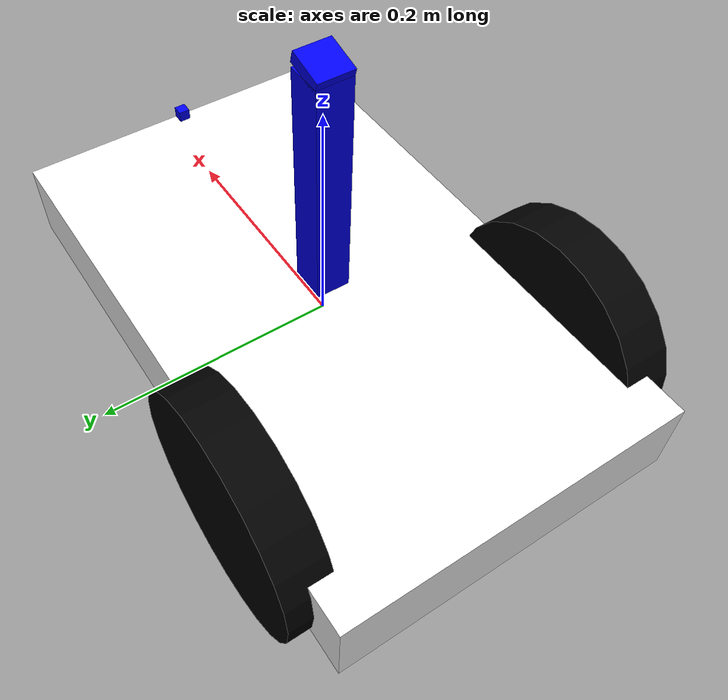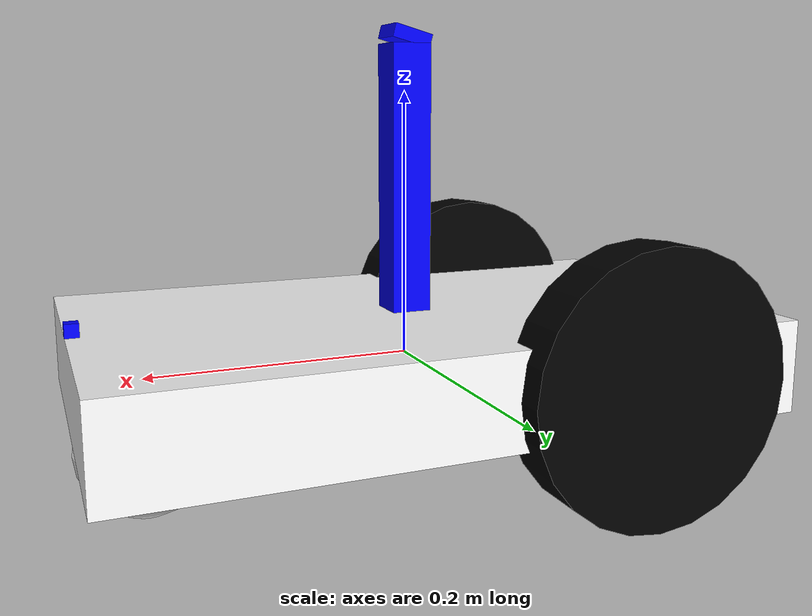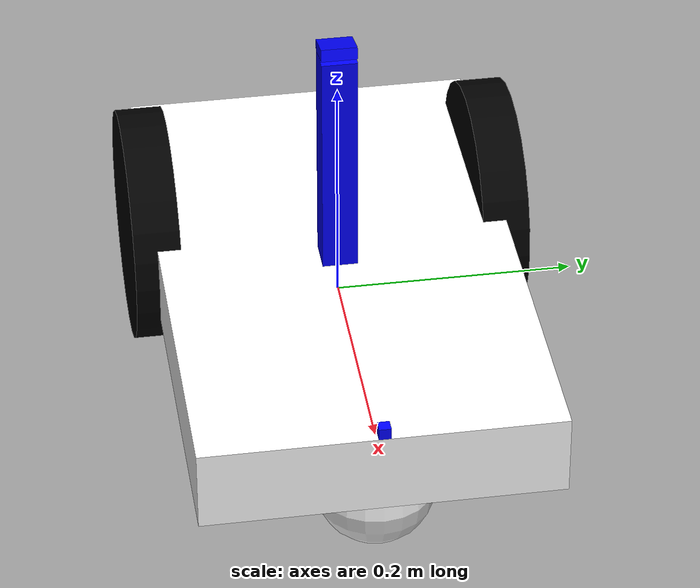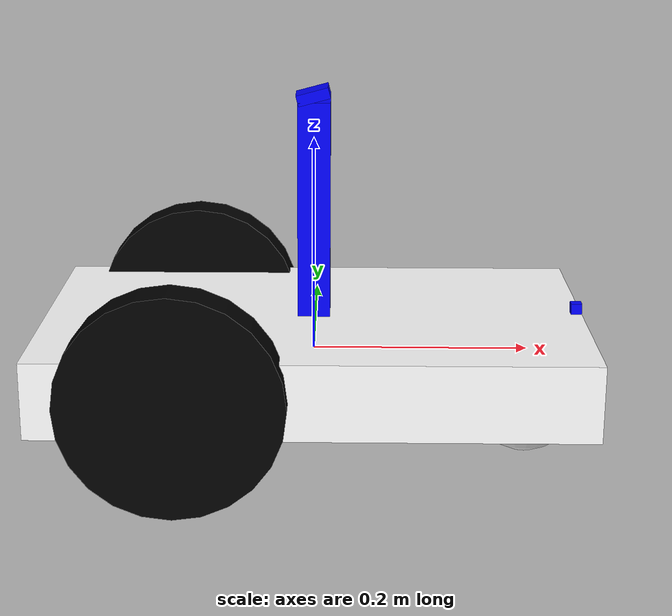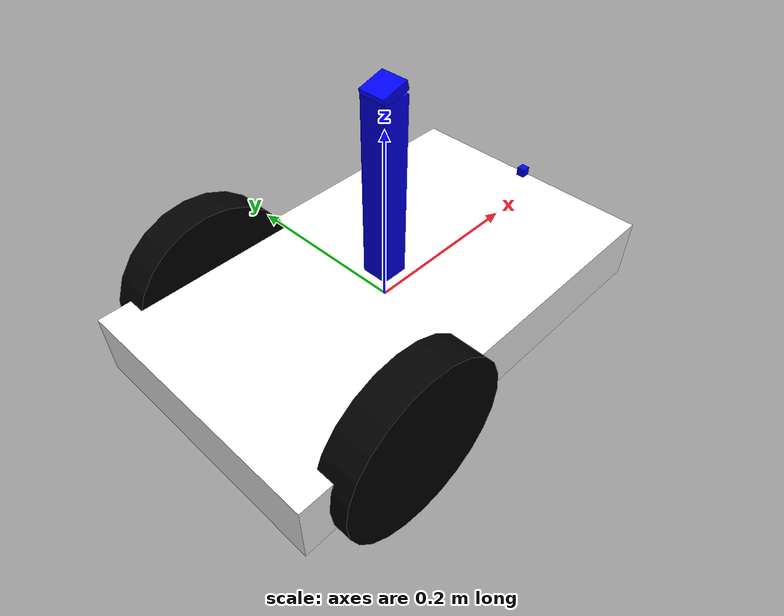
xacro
<?xml version="1.0"?>
<robot xmlns:xacro="http://www.ros.org/wiki/xacro" name="robot_xacro">
  <xacro:include filename="$(find assignment2)/urdf/robot_model.gazebo" />

  <!-- Create body model -->
  <link name="base_link">
    <inertial>
      <mass value="10" />
      <origin rpy="0 0 0" xyz="0 0 0.1" />
      <inertia ixx="0.0790833" ixy="0" ixz="0" iyy="0.2124166" iyz="0" izz="0.2833333" />
    </inertial>
    <collision name="collision_chassis">
      <geometry>
        <box size="0.5 0.3 0.07" />
      </geometry>
    </collision>
    <visual>
      <origin rpy="0 0 0" xyz="0 0 0" />
      <geometry>
        <box size="0.5 0.3 0.07" />
      </geometry>
      <material name="white">
        <color rgba="1.0 1.0 1.0 1.0" />
      </material>
    </visual>
    <collision name="caster_front_collision">
      <origin rpy=" 0 0 0" xyz="0.35 0 -0.05"/>
      <geometry>
        <sphere radius="0.05"/>
      </geometry>
    </collision>
    <visual name="caster_front_visual">
      <origin rpy=" 0 0 0" xyz="0.2 0 -0.05"/>
      <geometry>
        <sphere radius="0.05"/>
      </geometry>
    </visual>
  </link>

  <!-- Create wheels model -->
  <xacro:macro name="link_wheel" params="name">
    <link name="${name}">
      <inertial>
        <mass value="1" />
        <origin rpy="0 1.5707 1.5707" xyz="0 0 0" />
        <inertia ixx="0.000526666666667" ixy="0" ixz="0" iyy="0.000526666666667" iyz="0" izz="0.001" />
      </inertial>
      <collision name="${name}_collision">
        <origin rpy="0 1.5707 1.5707" xyz="0 0 0" />
        <geometry>
          <cylinder length="0.04" radius="0.1" />
        </geometry>
        <material name="black">
          <color rgba="0.0 0.0 0.0 1.0" />
        </material>
      </collision>
      <visual name="${name}_visual">
        <origin rpy="0 1.5707 1.5707" xyz="0 0 0" />
        <geometry>
          <cylinder length="0.04" radius="0.1" />
        </geometry>
        <material name="black">
          <color rgba="0.0 0.0 0.0 1.0" />
        </material>
      </visual>
    </link>
  </xacro:macro>
  <xacro:macro name="joint_wheel" params="name child origin_xyz">
    <joint name="${name}" type="continuous">
      <origin rpy="0 0 0" xyz="${origin_xyz}" />
      <child link="${child}" />
      <parent link="base_link" />
      <axis rpy="0 0 0" xyz="0 1 0" />
      <limit effort="10000" velocity="1000" />
      <joint_properties damping="1.0" friction="1.0" />
    </joint>
  </xacro:macro>
  <xacro:link_wheel name="link_back_left_wheel" />
  <xacro:link_wheel name="link_back_right_wheel" />
  <xacro:joint_wheel name="joint_back_left_wheel" child="link_back_left_wheel" origin_xyz="-0.12 0.15 0" />
  <xacro:joint_wheel name="joint_back_right_wheel" child="link_back_right_wheel" origin_xyz="-0.12 -0.15 0" />

  <!-- Create camera model -->
  <xacro:macro name="link_camera" params="name origin_xyz">
    <link name="${name}">
      <inertial>
        <mass value="0.05" />
        <origin xyz="0 0 0" rpy="0 0 0"/>
        <inertia ixx="1e-6" ixy="0" ixz="0" iyy="1e-6" iyz="0" izz="1e-6" />
      </inertial>
      <collision name="${name}_collision">
        <origin rpy="0 0 0" xyz="${origin_xyz}" />
        <geometry>
          <box size="0 0 0" />
        </geometry>
        <material name="blue">
          <color rgba="0 0 1 1.0" />
        </material>
      </collision>
      <visual name="${name}_visual">
        <origin rpy="0 0 0" xyz="${origin_xyz}" />
        <geometry>
          <box size="0.03 0.03 0.2" />
        </geometry>
        <material name="blue">
          <color rgba="0 0 1 1.0" />
        </material>
      </visual>
    </link>
  </xacro:macro>
  <xacro:link_camera name="camera_body" origin_xyz="0 0 0.1" />
  <xacro:link_camera name="camera_arm" origin_xyz="0 0 -0.1" />
  <xacro:link_camera name="camera_arm2" origin_xyz="0 0 -0.1" />
  <joint name="camera_body_joint" type="continuous">
    <origin rpy="0 0 0" xyz="0 0 0.035" />
    <child link="camera_body" />
    <parent link="base_link" />
    <axis xyz="0 0 1" />
    <limit effort="1" velocity="0.5" />
    <joint_properties damping="2.0" friction="1.0" />
  </joint>
  <joint name="camera_arm_joint" type="prismatic">
    <axis xyz="0 0 1" />
    <origin xyz="0 0 0.2" rpy="0 0 0"/>
    <parent link="camera_body"/>
    <child link="camera_arm"/>
    <limit lower= "0" upper="0.2" effort="1" velocity="1" />
    <joint_properties damping="1.0" friction="1.0" />
  </joint>
  <joint name="camera_arm2_joint" type="prismatic">
    <axis xyz="0 0 1" />
    <origin xyz="0 0 0" rpy="0 0 0"/>
    <parent link="camera_arm"/>
    <child link="camera_arm2"/>
    <limit lower= "0" upper="0.2" effort="1" velocity="1" />
    <joint_properties damping="1.0" friction="1.0" />
  </joint>

  <link name="camera_link">
    <inertial>
      <mass value="1e-5" />
      <origin xyz="0 0 0" rpy="0 0 0"/>
      <inertia ixx="1e-6" ixy="0" ixz="0" iyy="1e-6" iyz="0" izz="1e-6" />
    </inertial>
    <collision>
      <origin xyz="0 0 0.005" rpy="0 -0.13083 0"/>
      <geometry>
        <box size="0.03 0.03 0.01"/>
      </geometry>
    </collision>
    <visual>
      <origin xyz="0 0 0.005" rpy="0 -0.13083 0"/>
      <geometry>
        <box size="0.03 0.03 0.01"/>
      </geometry>
      <material name="blue">
        <color rgba="0 0 1 1.0" />
      </material>
    </visual>
  </link>
  <joint name="camera_joint" type="fixed">
    <axis xyz="1 0 0" />
    <origin xyz="0 0 0" rpy="0 -0.13083 0"/>
    <parent link="camera_arm2"/>
    <child link="camera_link"/>
  </joint>

  <!-- Create laser model -->
  <link name="laser_link">
    <inertial>
      <mass value="1e-5" />
      <origin xyz="0 0 0" rpy="0 0 0"/>
      <inertia ixx="1e-6" ixy="0" ixz="0" iyy="1e-6" iyz="0" izz="1e-6" />
    </inertial>
    <collision>
      <origin xyz="0.005 0 0.005" rpy="0 0 0"/>
      <geometry>
        <box size="0.01 0.01 0.01"/>
      </geometry>
    </collision>
    <visual>
      <origin xyz="0.005 0 0.005" rpy="0 0 0"/>
      <geometry>
        <box size="0.01 0.01 0.01"/>
      </geometry>
      <material name="blue">
        <color rgba="0 0 1 1.0" />
      </material>
    </visual>
  </link>
  <joint name="laser_joint" type="fixed">
    <origin rpy="0 0 0" xyz="0.24 0 0.035" />
    <child link="laser_link" />
    <parent link="base_link" />
    <axis xyz="0 0 1" />
  </joint>

  <!-- Create transmission model -->
  <xacro:macro name="transmission" params="name joint_name motor_name">
    <transmission name="${name}">
      <type>transmission_interface/SimpleTransmission</type>
      <joint name="${joint_name}">
        <hardwareInterface>hardware_interface/EffortJointInterface</hardwareInterface>
      </joint>
      <actuator name="${motor_name}">
        <hardwareInterface>hardware_interface/EffortJointInterface</hardwareInterface>
        <mechanicalInterface>1</mechanicalInterface>
      </actuator>
    </transmission>
  </xacro:macro>
  <xacro:transmission name="back_left_wheel_transmission" joint_name="joint_back_left_wheel" motor_name="motor_bl_wheel" />
  <xacro:transmission name="back_right_wheel_transmission" joint_name="joint_back_right_wheel" motor_name="motor_br_wheel" />
  <xacro:transmission name="camera_body_transmission" joint_name="camera_body_joint" motor_name="motor_camera_body" />
  <xacro:transmission name="camera_arm_transmission" joint_name="camera_arm_joint" motor_name="motor_camera_arm" />
  <xacro:transmission name="camera_arm2_transmission" joint_name="camera_arm2_joint" motor_name="motor_camera_arm2" />

</robot>
